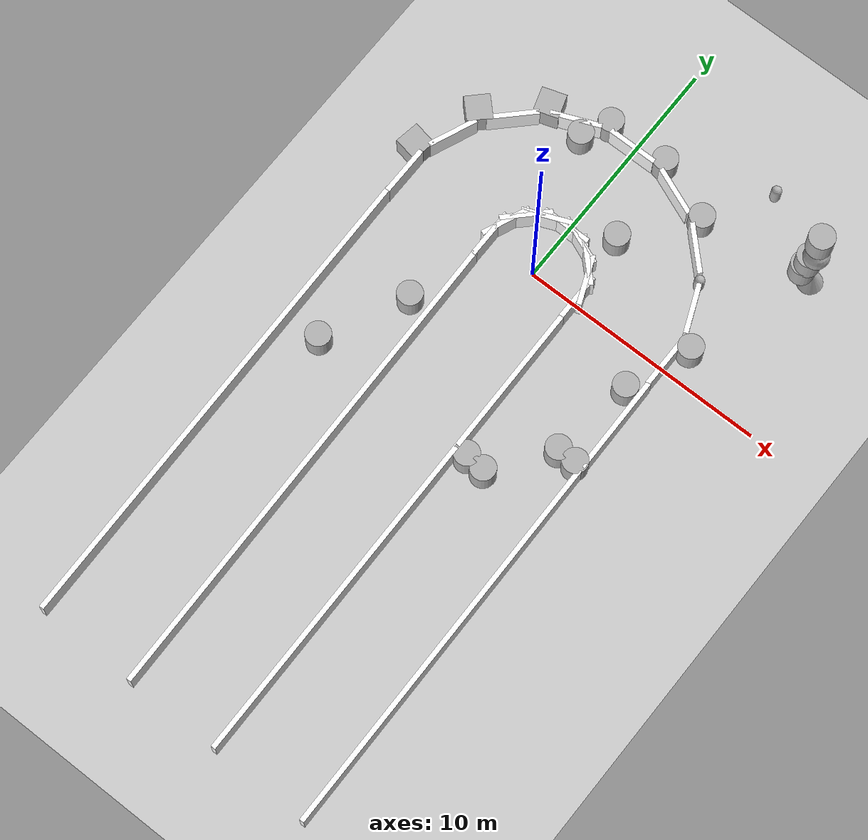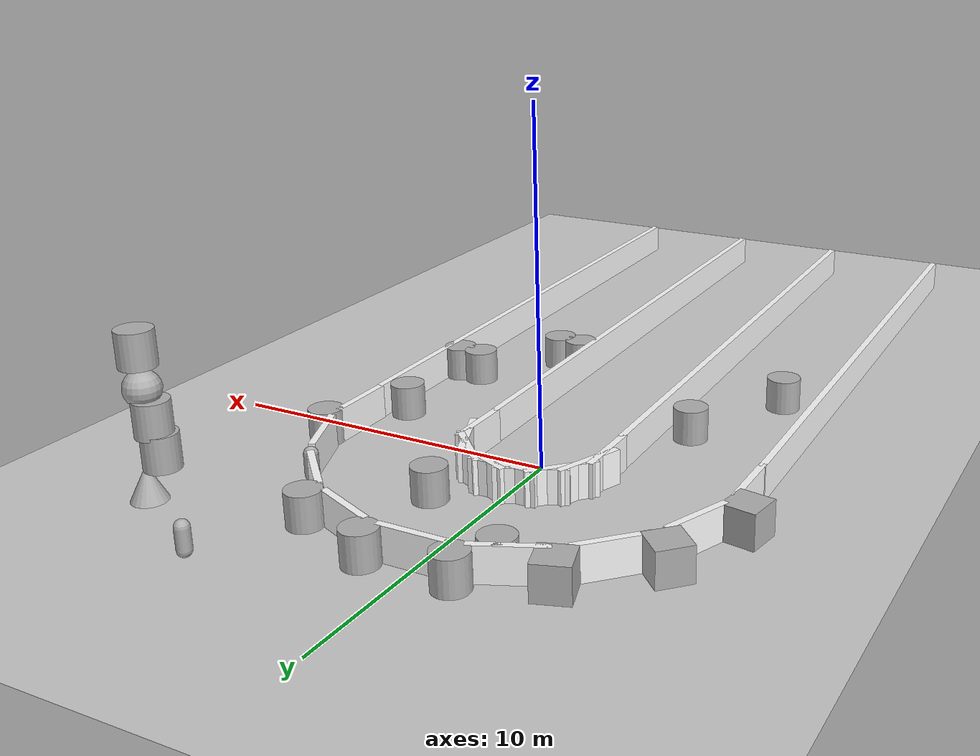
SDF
<sdf version='1.10'>
  <world name='smooth_uturn_world'>
    <gravity>0 0 -9.8000000000000007</gravity>
    <magnetic_field>5.5644999999999998e-06 2.2875799999999999e-05 -4.2388400000000002e-05</magnetic_field>
    <atmosphere type='adiabatic'/>
    <physics type='ode'>
      <max_step_size>0.001</max_step_size>
      <real_time_factor>1</real_time_factor>
      <real_time_update_rate>1000</real_time_update_rate>
    </physics>
    <scene>
      <ambient>0.400000006 0.400000006 0.400000006 1</ambient>
      <background>0.699999988 0.699999988 0.699999988 1</background>
      <shadows>true</shadows>
    </scene>
    <model name='ground'>
      <static>true</static>
      <link name='ground_link'>
        <collision name='collision'>
          <geometry>
            <plane>
              <normal>0 0 1</normal>
              <size>200 200</size>
            </plane>
          </geometry>
          <surface>
            <friction>
              <ode/>
            </friction>
            <bounce/>
            <contact/>
          </surface>
        </collision>
        <visual name='visual'>
          <geometry>
            <plane>
              <normal>0 0 1</normal>
              <size>200 200</size>
            </plane>
          </geometry>
          <material>
            <ambient>0.699999988 0.699999988 0.699999988 1</ambient>
            <diffuse>0.800000012 0.800000012 0.800000012 1</diffuse>
          </material>
        </visual>
        <pose>0 0 0 0 0 0</pose>
        <inertial>
          <pose>0 0 0 0 0 0</pose>
          <mass>1</mass>
          <inertia>
            <ixx>1</ixx>
            <ixy>0</ixy>
            <ixz>0</ixz>
            <iyy>1</iyy>
            <iyz>0</iyz>
            <izz>1</izz>
          </inertia>
        </inertial>
        <enable_wind>false</enable_wind>
      </link>
      <pose>0 0 0 0 0 0</pose>
      <self_collide>false</self_collide>
    </model>
    <model name='entry_wall_left'>
      <static>true</static>
      <link name='link'>
        <pose>-15 2 0.5 0 0 0</pose>
        <collision name='collision'>
          <geometry>
            <box>
              <size>20 0.20000000000000001 1</size>
            </box>
          </geometry>
          <surface>
            <friction>
              <ode/>
            </friction>
            <bounce/>
            <contact/>
          </surface>
        </collision>
        <visual name='visual'>
          <geometry>
            <box>
              <size>20 0.20000000000000001 1</size>
            </box>
          </geometry>
          <material>
            <ambient>1 1 1 1</ambient>
            <diffuse>1 1 1 1</diffuse>
          </material>
        </visual>
        <inertial>
          <pose>0 0 0 0 0 0</pose>
          <mass>1</mass>
          <inertia>
            <ixx>1</ixx>
            <ixy>0</ixy>
            <ixz>0</ixz>
            <iyy>1</iyy>
            <iyz>0</iyz>
            <izz>1</izz>
          </inertia>
        </inertial>
        <enable_wind>false</enable_wind>
      </link>
      <pose>-0.079777665436267853 4.1301455497741699 0 0 0 1.5901099989260186</pose>
      <self_collide>false</self_collide>
    </model>
    <model name='entry_wall_right'>
      <static>true</static>
      <link name='link'>
        <pose>-15 -2 0.5 0 0 0</pose>
        <collision name='collision'>
          <geometry>
            <box>
              <size>20 0.20000000000000001 1</size>
            </box>
          </geometry>
          <surface>
            <friction>
              <ode/>
            </friction>
            <bounce/>
            <contact/>
          </surface>
        </collision>
        <visual name='visual'>
          <geometry>
            <box>
              <size>20 0.20000000000000001 1</size>
            </box>
          </geometry>
          <material>
            <ambient>1 1 1 1</ambient>
            <diffuse>1 1 1 1</diffuse>
          </material>
        </visual>
        <inertial>
          <pose>0 0 0 0 0 0</pose>
          <mass>1</mass>
          <inertia>
            <ixx>1</ixx>
            <ixy>0</ixy>
            <ixz>0</ixz>
            <iyy>1</iyy>
            <iyz>0</iyz>
            <izz>1</izz>
          </inertia>
        </inertial>
        <enable_wind>false</enable_wind>
      </link>
      <pose>-8.1088581085205078 4.1304593086242676 0 0 0 1.5883200302631473</pose>
      <self_collide>false</self_collide>
    </model>
    <model name='outer_curve_1'>
      <static>true</static>
      <link name='link'>
        <pose>-6 0 0.5 0 0 1.571</pose>
        <collision name='collision'>
          <geometry>
            <box>
              <size>2 0.20000000000000001 1</size>
            </box>
          </geometry>
          <surface>
            <friction>
              <ode/>
            </friction>
            <bounce/>
            <contact/>
          </surface>
        </collision>
        <visual name='visual'>
          <geometry>
            <box>
              <size>2 0.20000000000000001 1</size>
            </box>
          </geometry>
          <material>
            <ambient>1 1 1 1</ambient>
            <diffuse>1 1 1 1</diffuse>
          </material>
        </visual>
        <inertial>
          <pose>0 0 0 0 0 0</pose>
          <mass>1</mass>
          <inertia>
            <ixx>1</ixx>
            <ixy>0</ixy>
            <ixz>0</ixz>
            <iyy>1</iyy>
            <iyz>0</iyz>
            <izz>1</izz>
          </inertia>
        </inertial>
        <enable_wind>false</enable_wind>
      </link>
      <pose>0 -3.5527136788005009e-15 0 0 0 -4.4408920985006262e-16</pose>
      <self_collide>false</self_collide>
    </model>
    <model name='outer_curve_2'>
      <static>true</static>
      <link name='link'>
        <pose>-5.5439999999999996 2.298 0.5 0 0 1.1779999999999999</pose>
        <collision name='collision'>
          <geometry>
            <box>
              <size>2 0.20000000000000001 1</size>
            </box>
          </geometry>
          <surface>
            <friction>
              <ode/>
            </friction>
            <bounce/>
            <contact/>
          </surface>
        </collision>
        <visual name='visual'>
          <geometry>
            <box>
              <size>2 0.20000000000000001 1</size>
            </box>
          </geometry>
          <material>
            <ambient>1 1 1 1</ambient>
            <diffuse>1 1 1 1</diffuse>
          </material>
        </visual>
        <inertial>
          <pose>0 0 0 0 0 0</pose>
          <mass>1</mass>
          <inertia>
            <ixx>1</ixx>
            <ixy>0</ixy>
            <ixz>0</ixz>
            <iyy>1</iyy>
            <iyz>0</iyz>
            <izz>1</izz>
          </inertia>
        </inertial>
        <enable_wind>false</enable_wind>
      </link>
      <pose>8.8817841970012523e-16 0 -1.1102230246251565e-16 0 0 1.1102230246251565e-16</pose>
      <self_collide>false</self_collide>
    </model>
    <model name='outer_curve_3'>
      <static>true</static>
      <link name='link'>
        <pose>-4.2430000000000003 4.2430000000000003 0.5 0 0 0.78500000000000025</pose>
        <collision name='collision'>
          <geometry>
            <box>
              <size>2 0.20000000000000001 1</size>
            </box>
          </geometry>
          <surface>
            <friction>
              <ode/>
            </friction>
            <bounce/>
            <contact/>
          </surface>
        </collision>
        <visual name='visual'>
          <geometry>
            <box>
              <size>2 0.20000000000000001 1</size>
            </box>
          </geometry>
          <material>
            <ambient>1 1 1 1</ambient>
            <diffuse>1 1 1 1</diffuse>
          </material>
        </visual>
        <inertial>
          <pose>0 0 0 0 0 0</pose>
          <mass>1</mass>
          <inertia>
            <ixx>1</ixx>
            <ixy>0</ixy>
            <ixz>0</ixz>
            <iyy>1</iyy>
            <iyz>0</iyz>
            <izz>1</izz>
          </inertia>
        </inertial>
        <enable_wind>false</enable_wind>
      </link>
      <pose>1.7763568394002505e-15 2.6645352591003757e-15 0 0 0 2.2204460492503136e-16</pose>
      <self_collide>false</self_collide>
    </model>
    <model name='outer_curve_4'>
      <static>true</static>
      <link name='link'>
        <pose>-2.298 5.5439999999999996 0.5 0 0 0.39300000000000002</pose>
        <collision name='collision'>
          <geometry>
            <box>
              <size>2 0.20000000000000001 1</size>
            </box>
          </geometry>
          <surface>
            <friction>
              <ode/>
            </friction>
            <bounce/>
            <contact/>
          </surface>
        </collision>
        <visual name='visual'>
          <geometry>
            <box>
              <size>2 0.20000000000000001 1</size>
            </box>
          </geometry>
          <material>
            <ambient>1 1 1 1</ambient>
            <diffuse>1 1 1 1</diffuse>
          </material>
        </visual>
        <inertial>
          <pose>0 0 0 0 0 0</pose>
          <mass>1</mass>
          <inertia>
            <ixx>1</ixx>
            <ixy>0</ixy>
            <ixz>0</ixz>
            <iyy>1</iyy>
            <iyz>0</iyz>
            <izz>1</izz>
          </inertia>
        </inertial>
        <enable_wind>false</enable_wind>
      </link>
      <pose>0 0 0 0 0 0</pose>
      <self_collide>false</self_collide>
    </model>
    <model name='outer_curve_5'>
      <static>true</static>
      <link name='link'>
        <pose>0 6 0.5 0 0 0</pose>
        <collision name='collision'>
          <geometry>
            <box>
              <size>2 0.20000000000000001 1</size>
            </box>
          </geometry>
          <surface>
            <friction>
              <ode/>
            </friction>
            <bounce/>
            <contact/>
          </surface>
        </collision>
        <visual name='visual'>
          <geometry>
            <box>
              <size>2 0.20000000000000001 1</size>
            </box>
          </geometry>
          <material>
            <ambient>1 1 1 1</ambient>
            <diffuse>1 1 1 1</diffuse>
          </material>
        </visual>
        <inertial>
          <pose>0 0 0 0 0 0</pose>
          <mass>1</mass>
          <inertia>
            <ixx>1</ixx>
            <ixy>0</ixy>
            <ixz>0</ixz>
            <iyy>1</iyy>
            <iyz>0</iyz>
            <izz>1</izz>
          </inertia>
        </inertial>
        <enable_wind>false</enable_wind>
      </link>
      <pose>0 0 0 0 0 0</pose>
      <self_collide>false</self_collide>
    </model>
    <model name='outer_curve_6'>
      <static>true</static>
      <link name='link'>
        <pose>2.298 5.5439999999999996 0.5 0 0 -0.39300000000000002</pose>
        <collision name='collision'>
          <geometry>
            <box>
              <size>2 0.20000000000000001 1</size>
            </box>
          </geometry>
          <surface>
            <friction>
              <ode/>
            </friction>
            <bounce/>
            <contact/>
          </surface>
        </collision>
        <visual name='visual'>
          <geometry>
            <box>
              <size>2 0.20000000000000001 1</size>
            </box>
          </geometry>
          <material>
            <ambient>1 1 1 1</ambient>
            <diffuse>1 1 1 1</diffuse>
          </material>
        </visual>
        <inertial>
          <pose>0 0 0 0 0 0</pose>
          <mass>1</mass>
          <inertia>
            <ixx>1</ixx>
            <ixy>0</ixy>
            <ixz>0</ixz>
            <iyy>1</iyy>
            <iyz>0</iyz>
            <izz>1</izz>
          </inertia>
        </inertial>
        <enable_wind>false</enable_wind>
      </link>
      <pose>0 0 0 0 0 0</pose>
      <self_collide>false</self_collide>
    </model>
    <model name='outer_curve_7'>
      <static>true</static>
      <link name='link'>
        <pose>4.2430000000000003 4.2430000000000003 0.5 0 0 -0.78500000000000025</pose>
        <collision name='collision'>
          <geometry>
            <box>
              <size>2 0.20000000000000001 1</size>
            </box>
          </geometry>
          <surface>
            <friction>
              <ode/>
            </friction>
            <bounce/>
            <contact/>
          </surface>
        </collision>
        <visual name='visual'>
          <geometry>
            <box>
              <size>2 0.20000000000000001 1</size>
            </box>
          </geometry>
          <material>
            <ambient>1 1 1 1</ambient>
            <diffuse>1 1 1 1</diffuse>
          </material>
        </visual>
        <inertial>
          <pose>0 0 0 0 0 0</pose>
          <mass>1</mass>
          <inertia>
            <ixx>1</ixx>
            <ixy>0</ixy>
            <ixz>0</ixz>
            <iyy>1</iyy>
            <iyz>0</iyz>
            <izz>1</izz>
          </inertia>
        </inertial>
        <enable_wind>false</enable_wind>
      </link>
      <pose>-1.7763568394002505e-15 2.6645352591003757e-15 0 0 0 -2.2204460492503136e-16</pose>
      <self_collide>false</self_collide>
    </model>
    <model name='outer_curve_8'>
      <static>true</static>
      <link name='link'>
        <pose>5.5439999999999996 2.298 0.5 0 0 -1.1779999999999999</pose>
        <collision name='collision'>
          <geometry>
            <box>
              <size>2 0.20000000000000001 1</size>
            </box>
          </geometry>
          <surface>
            <friction>
              <ode/>
            </friction>
            <bounce/>
            <contact/>
          </surface>
        </collision>
        <visual name='visual'>
          <geometry>
            <box>
              <size>2 0.20000000000000001 1</size>
            </box>
          </geometry>
          <material>
            <ambient>1 1 1 1</ambient>
            <diffuse>1 1 1 1</diffuse>
          </material>
        </visual>
        <inertial>
          <pose>0 0 0 0 0 0</pose>
          <mass>1</mass>
          <inertia>
            <ixx>1</ixx>
            <ixy>0</ixy>
            <ixz>0</ixz>
            <iyy>1</iyy>
            <iyz>0</iyz>
            <izz>1</izz>
          </inertia>
        </inertial>
        <enable_wind>false</enable_wind>
      </link>
      <pose>-8.8817841970012523e-16 0 -1.1102230246251565e-16 0 0 -1.1102230246251565e-16</pose>
      <self_collide>false</self_collide>
    </model>
    <model name='outer_curve_9'>
      <static>true</static>
      <link name='link'>
        <pose>6 0 0.5 0 0 -1.571</pose>
        <collision name='collision'>
          <geometry>
            <box>
              <size>2 0.20000000000000001 1</size>
            </box>
          </geometry>
          <surface>
            <friction>
              <ode/>
            </friction>
            <bounce/>
            <contact/>
          </surface>
        </collision>
        <visual name='visual'>
          <geometry>
            <box>
              <size>2 0.20000000000000001 1</size>
            </box>
          </geometry>
          <material>
            <ambient>1 1 1 1</ambient>
            <diffuse>1 1 1 1</diffuse>
          </material>
        </visual>
        <inertial>
          <pose>0 0 0 0 0 0</pose>
          <mass>1</mass>
          <inertia>
            <ixx>1</ixx>
            <ixy>0</ixy>
            <ixz>0</ixz>
            <iyy>1</iyy>
            <iyz>0</iyz>
            <izz>1</izz>
          </inertia>
        </inertial>
        <enable_wind>false</enable_wind>
      </link>
      <pose>0 -3.5527136788005009e-15 0 0 0 4.4408920985006262e-16</pose>
      <self_collide>false</self_collide>
    </model>
    <model name='inner_curve_1'>
      <static>true</static>
      <link name='link'>
        <pose>-2 0 0.5 0 0 1.571</pose>
        <collision name='collision'>
          <geometry>
            <box>
              <size>2 0.20000000000000001 1</size>
            </box>
          </geometry>
          <surface>
            <friction>
              <ode/>
            </friction>
            <bounce/>
            <contact/>
          </surface>
        </collision>
        <visual name='visual'>
          <geometry>
            <box>
              <size>2 0.20000000000000001 1</size>
            </box>
          </geometry>
          <material>
            <ambient>1 1 1 1</ambient>
            <diffuse>1 1 1 1</diffuse>
          </material>
        </visual>
        <inertial>
          <pose>0 0 0 0 0 0</pose>
          <mass>1</mass>
          <inertia>
            <ixx>1</ixx>
            <ixy>0</ixy>
            <ixz>0</ixz>
            <iyy>1</iyy>
            <iyz>0</iyz>
            <izz>1</izz>
          </inertia>
        </inertial>
        <enable_wind>false</enable_wind>
      </link>
      <pose>0 -9.9920072216264089e-16 0 0 0 -4.4408920985006262e-16</pose>
      <self_collide>false</self_collide>
    </model>
    <model name='inner_curve_2'>
      <static>true</static>
      <link name='link'>
        <pose>-1.8480000000000001 0.76500000000000001 0.5 0 0 1.1779999999999999</pose>
        <collision name='collision'>
          <geometry>
            <box>
              <size>2 0.20000000000000001 1</size>
            </box>
          </geometry>
          <surface>
            <friction>
              <ode/>
            </friction>
            <bounce/>
            <contact/>
          </surface>
        </collision>
        <visual name='visual'>
          <geometry>
            <box>
              <size>2 0.20000000000000001 1</size>
            </box>
          </geometry>
          <material>
            <ambient>1 1 1 1</ambient>
            <diffuse>1 1 1 1</diffuse>
          </material>
        </visual>
        <inertial>
          <pose>0 0 0 0 0 0</pose>
          <mass>1</mass>
          <inertia>
            <ixx>1</ixx>
            <ixy>0</ixy>
            <ixz>0</ixz>
            <iyy>1</iyy>
            <iyz>0</iyz>
            <izz>1</izz>
          </inertia>
        </inertial>
        <enable_wind>false</enable_wind>
      </link>
      <pose>2.2204460492503131e-16 -3.3306690738754696e-16 -1.1102230246251565e-16 0 0 1.1102230246251565e-16</pose>
      <self_collide>false</self_collide>
    </model>
    <model name='inner_curve_3'>
      <static>true</static>
      <link name='link'>
        <pose>-1.4139999999999999 1.4139999999999999 0.5 0 0 0.78500000000000025</pose>
        <collision name='collision'>
          <geometry>
            <box>
              <size>2 0.20000000000000001 1</size>
            </box>
          </geometry>
          <surface>
            <friction>
              <ode/>
            </friction>
            <bounce/>
            <contact/>
          </surface>
        </collision>
        <visual name='visual'>
          <geometry>
            <box>
              <size>2 0.20000000000000001 1</size>
            </box>
          </geometry>
          <material>
            <ambient>1 1 1 1</ambient>
            <diffuse>1 1 1 1</diffuse>
          </material>
        </visual>
        <inertial>
          <pose>0 0 0 0 0 0</pose>
          <mass>1</mass>
          <inertia>
            <ixx>1</ixx>
            <ixy>0</ixy>
            <ixz>0</ixz>
            <iyy>1</iyy>
            <iyz>0</iyz>
            <izz>1</izz>
          </inertia>
        </inertial>
        <enable_wind>false</enable_wind>
      </link>
      <pose>6.6613381477509392e-16 4.4408920985006262e-16 0 0 0 2.2204460492503136e-16</pose>
      <self_collide>false</self_collide>
    </model>
    <model name='inner_curve_4'>
      <static>true</static>
      <link name='link'>
        <pose>-0.76500000000000001 1.8480000000000001 0.5 0 0 0.39300000000000002</pose>
        <collision name='collision'>
          <geometry>
            <box>
              <size>2 0.20000000000000001 1</size>
            </box>
          </geometry>
          <surface>
            <friction>
              <ode/>
            </friction>
            <bounce/>
            <contact/>
          </surface>
        </collision>
        <visual name='visual'>
          <geometry>
            <box>
              <size>2 0.20000000000000001 1</size>
            </box>
          </geometry>
          <material>
            <ambient>1 1 1 1</ambient>
            <diffuse>1 1 1 1</diffuse>
          </material>
        </visual>
        <inertial>
          <pose>0 0 0 0 0 0</pose>
          <mass>1</mass>
          <inertia>
            <ixx>1</ixx>
            <ixy>0</ixy>
            <ixz>0</ixz>
            <iyy>1</iyy>
            <iyz>0</iyz>
            <izz>1</izz>
          </inertia>
        </inertial>
        <enable_wind>false</enable_wind>
      </link>
      <pose>-1.1102230246251565e-16 2.2204460492503131e-16 0 0 0 0</pose>
      <self_collide>false</self_collide>
    </model>
    <model name='inner_curve_5'>
      <static>true</static>
      <link name='link'>
        <pose>0 2 0.5 0 0 0</pose>
        <collision name='collision'>
          <geometry>
            <box>
              <size>2 0.20000000000000001 1</size>
            </box>
          </geometry>
          <surface>
            <friction>
              <ode/>
            </friction>
            <bounce/>
            <contact/>
          </surface>
        </collision>
        <visual name='visual'>
          <geometry>
            <box>
              <size>2 0.20000000000000001 1</size>
            </box>
          </geometry>
          <material>
            <ambient>1 1 1 1</ambient>
            <diffuse>1 1 1 1</diffuse>
          </material>
        </visual>
        <inertial>
          <pose>0 0 0 0 0 0</pose>
          <mass>1</mass>
          <inertia>
            <ixx>1</ixx>
            <ixy>0</ixy>
            <ixz>0</ixz>
            <iyy>1</iyy>
            <iyz>0</iyz>
            <izz>1</izz>
          </inertia>
        </inertial>
        <enable_wind>false</enable_wind>
      </link>
      <pose>0 0 0 0 0 0</pose>
      <self_collide>false</self_collide>
    </model>
    <model name='inner_curve_6'>
      <static>true</static>
      <link name='link'>
        <pose>0.76500000000000001 1.8480000000000001 0.5 0 0 -0.39300000000000002</pose>
        <collision name='collision'>
          <geometry>
            <box>
              <size>2 0.20000000000000001 1</size>
            </box>
          </geometry>
          <surface>
            <friction>
              <ode/>
            </friction>
            <bounce/>
            <contact/>
          </surface>
        </collision>
        <visual name='visual'>
          <geometry>
            <box>
              <size>2 0.20000000000000001 1</size>
            </box>
          </geometry>
          <material>
            <ambient>1 1 1 1</ambient>
            <diffuse>1 1 1 1</diffuse>
          </material>
        </visual>
        <inertial>
          <pose>0 0 0 0 0 0</pose>
          <mass>1</mass>
          <inertia>
            <ixx>1</ixx>
            <ixy>0</ixy>
            <ixz>0</ixz>
            <iyy>1</iyy>
            <iyz>0</iyz>
            <izz>1</izz>
          </inertia>
        </inertial>
        <enable_wind>false</enable_wind>
      </link>
      <pose>1.1102230246251565e-16 2.2204460492503131e-16 0 0 0 0</pose>
      <self_collide>false</self_collide>
    </model>
    <model name='inner_curve_7'>
      <static>true</static>
      <link name='link'>
        <pose>1.4139999999999999 1.4139999999999999 0.5 0 0 -0.78500000000000025</pose>
        <collision name='collision'>
          <geometry>
            <box>
              <size>2 0.20000000000000001 1</size>
            </box>
          </geometry>
          <surface>
            <friction>
              <ode/>
            </friction>
            <bounce/>
            <contact/>
          </surface>
        </collision>
        <visual name='visual'>
          <geometry>
            <box>
              <size>2 0.20000000000000001 1</size>
            </box>
          </geometry>
          <material>
            <ambient>1 1 1 1</ambient>
            <diffuse>1 1 1 1</diffuse>
          </material>
        </visual>
        <inertial>
          <pose>0 0 0 0 0 0</pose>
          <mass>1</mass>
          <inertia>
            <ixx>1</ixx>
            <ixy>0</ixy>
            <ixz>0</ixz>
            <iyy>1</iyy>
            <iyz>0</iyz>
            <izz>1</izz>
          </inertia>
        </inertial>
        <enable_wind>false</enable_wind>
      </link>
      <pose>-6.6613381477509392e-16 4.4408920985006262e-16 0 0 0 -2.2204460492503136e-16</pose>
      <self_collide>false</self_collide>
    </model>
    <model name='inner_curve_8'>
      <static>true</static>
      <link name='link'>
        <pose>1.8480000000000001 0.76500000000000001 0.5 0 0 -1.1779999999999999</pose>
        <collision name='collision'>
          <geometry>
            <box>
              <size>2 0.20000000000000001 1</size>
            </box>
          </geometry>
          <surface>
            <friction>
              <ode/>
            </friction>
            <bounce/>
            <contact/>
          </surface>
        </collision>
        <visual name='visual'>
          <geometry>
            <box>
              <size>2 0.20000000000000001 1</size>
            </box>
          </geometry>
          <material>
            <ambient>1 1 1 1</ambient>
            <diffuse>1 1 1 1</diffuse>
          </material>
        </visual>
        <inertial>
          <pose>0 0 0 0 0 0</pose>
          <mass>1</mass>
          <inertia>
            <ixx>1</ixx>
            <ixy>0</ixy>
            <ixz>0</ixz>
            <iyy>1</iyy>
            <iyz>0</iyz>
            <izz>1</izz>
          </inertia>
        </inertial>
        <enable_wind>false</enable_wind>
      </link>
      <pose>-2.2204460492503131e-16 -3.3306690738754696e-16 -1.1102230246251565e-16 0 0 -1.1102230246251565e-16</pose>
      <self_collide>false</self_collide>
    </model>
    <model name='inner_curve_9'>
      <static>true</static>
      <link name='link'>
        <pose>2 0 0.5 0 0 -1.571</pose>
        <collision name='collision'>
          <geometry>
            <box>
              <size>2 0.20000000000000001 1</size>
            </box>
          </geometry>
          <surface>
            <friction>
              <ode/>
            </friction>
            <bounce/>
            <contact/>
          </surface>
        </collision>
        <visual name='visual'>
          <geometry>
            <box>
              <size>2 0.20000000000000001 1</size>
            </box>
          </geometry>
          <material>
            <ambient>1 1 1 1</ambient>
            <diffuse>1 1 1 1</diffuse>
          </material>
        </visual>
        <inertial>
          <pose>0 0 0 0 0 0</pose>
          <mass>1</mass>
          <inertia>
            <ixx>1</ixx>
            <ixy>0</ixy>
            <ixz>0</ixz>
            <iyy>1</iyy>
            <iyz>0</iyz>
            <izz>1</izz>
          </inertia>
        </inertial>
        <enable_wind>false</enable_wind>
      </link>
      <pose>0 -9.9920072216264089e-16 0 0 0 4.4408920985006262e-16</pose>
      <self_collide>false</self_collide>
    </model>
    <model name='exit_wall_left'>
      <static>true</static>
      <link name='link'>
        <pose>15 -2 0.5 0 0 0</pose>
        <collision name='collision'>
          <geometry>
            <box>
              <size>20 0.20000000000000001 1</size>
            </box>
          </geometry>
          <surface>
            <friction>
              <ode/>
            </friction>
            <bounce/>
            <contact/>
          </surface>
        </collision>
        <visual name='visual'>
          <geometry>
            <box>
              <size>20 0.20000000000000001 1</size>
            </box>
          </geometry>
          <material>
            <ambient>1 1 1 1</ambient>
            <diffuse>1 1 1 1</diffuse>
          </material>
        </visual>
        <inertial>
          <pose>0 0 0 0 0 0</pose>
          <mass>1</mass>
          <inertia>
            <ixx>1</ixx>
            <ixy>0</ixy>
            <ixz>0</ixz>
            <iyy>1</iyy>
            <iyz>0</iyz>
            <izz>1</izz>
          </inertia>
        </inertial>
        <enable_wind>false</enable_wind>
      </link>
      <pose>3.9622550010681152 4.113278865814209 0 0 0 -1.5601300046990412</pose>
      <self_collide>false</self_collide>
    </model>
    <model name='capsule'>
      <pose>5.1967672263683031 7.9302386483008389 0.5 0 0 0</pose>
      <link name='capsule_link'>
        <inertial>
          <inertia>
            <ixx>0.074153999999999998</ixx>
            <ixy>0</ixy>
            <ixz>0</ixz>
            <iyy>0.074153999999999998</iyy>
            <iyz>0</iyz>
            <izz>0.018769000000000001</izz>
          </inertia>
          <mass>1</mass>
          <pose>0 0 0 0 0 0</pose>
        </inertial>
        <collision name='capsule_collision'>
          <geometry>
            <capsule>
              <radius>0.20000000000000001</radius>
              <length>0.59999999999999998</length>
            </capsule>
          </geometry>
          <surface>
            <friction>
              <ode/>
            </friction>
            <bounce/>
            <contact/>
          </surface>
        </collision>
        <visual name='capsule_visual'>
          <geometry>
            <capsule>
              <radius>0.20000000000000001</radius>
              <length>0.59999999999999998</length>
            </capsule>
          </geometry>
          <material>
            <ambient>0.300000012 0.300000012 0.300000012 1</ambient>
            <diffuse>0.699999988 0.699999988 0.699999988 1</diffuse>
            <specular>1 1 1 1</specular>
          </material>
        </visual>
        <pose>0 0 0 0 0 0</pose>
        <enable_wind>false</enable_wind>
      </link>
      <static>false</static>
      <self_collide>false</self_collide>
    </model>
    <model name='exit_wall_left_1'>
      <static>true</static>
      <link name='link'>
        <pose>15 -2 0.5 0 0 0</pose>
        <collision name='collision'>
          <geometry>
            <box>
              <size>20 0.20000000000000001 1</size>
            </box>
          </geometry>
          <surface>
            <friction>
              <ode/>
            </friction>
            <bounce/>
            <contact/>
          </surface>
        </collision>
        <visual name='visual'>
          <geometry>
            <box>
              <size>20 0.20000000000000001 1</size>
            </box>
          </geometry>
          <material>
            <ambient>1 1 1 1</ambient>
            <diffuse>1 1 1 1</diffuse>
          </material>
        </visual>
      </link>
      <pose>7.9746796555493837 4.0458544120549345 0 0 0 -1.5601300046990412</pose>
      <self_collide>false</self_collide>
    </model>
    <model name='box'>
      <pose>-5.4183287620544442 3.6707358360290532 0.5 0 0 0.78733296771939243</pose>
      <link name='box_link'>
        <inertial>
          <inertia>
            <ixx>0.16666</ixx>
            <ixy>0</ixy>
            <ixz>0</ixz>
            <iyy>0.16666</iyy>
            <iyz>0</iyz>
            <izz>0.16666</izz>
          </inertia>
          <mass>1</mass>
          <pose>0 0 0 0 0 0</pose>
        </inertial>
        <collision name='box_collision'>
          <geometry>
            <box>
              <size>1 1 1</size>
            </box>
          </geometry>
          <surface>
            <friction>
              <ode/>
            </friction>
            <bounce/>
            <contact/>
          </surface>
        </collision>
        <visual name='box_visual'>
          <geometry>
            <box>
              <size>1 1 1</size>
            </box>
          </geometry>
          <material>
            <ambient>0.300000012 0.300000012 0.300000012 1</ambient>
            <diffuse>0.699999988 0.699999988 0.699999988 1</diffuse>
            <specular>1 1 1 1</specular>
          </material>
        </visual>
        <pose>0 0 0 0 0 0</pose>
        <enable_wind>false</enable_wind>
      </link>
      <static>false</static>
      <self_collide>false</self_collide>
    </model>
    <model name='box_0'>
      <pose>-6.392509937286377 1.1493599414825439 0.5 0 0 -0.16541169323810806</pose>
      <link name='box_link'>
        <inertial>
          <inertia>
            <ixx>0.16666</ixx>
            <ixy>0</ixy>
            <ixz>0</ixz>
            <iyy>0.16666</iyy>
            <iyz>0</iyz>
            <izz>0.16666</izz>
          </inertia>
          <mass>1</mass>
          <pose>0 0 0 0 0 0</pose>
        </inertial>
        <collision name='box_collision'>
          <geometry>
            <box>
              <size>1 1 1</size>
            </box>
          </geometry>
          <surface>
            <friction>
              <ode/>
            </friction>
            <bounce/>
            <contact/>
          </surface>
        </collision>
        <visual name='box_visual'>
          <geometry>
            <box>
              <size>1 1 1</size>
            </box>
          </geometry>
          <material>
            <ambient>0.300000012 0.300000012 0.300000012 1</ambient>
            <diffuse>0.699999988 0.699999988 0.699999988 1</diffuse>
            <specular>1 1 1 1</specular>
          </material>
        </visual>
        <pose>0 0 0 0 0 0</pose>
        <enable_wind>false</enable_wind>
      </link>
      <static>false</static>
      <self_collide>false</self_collide>
    </model>
    <model name='box_1'>
      <pose>-3.4463784694671631 5.471390724182128 0.5 0 0 0.31045599556283343</pose>
      <link name='box_link'>
        <inertial>
          <inertia>
            <ixx>0.16666</ixx>
            <ixy>0</ixy>
            <ixz>0</ixz>
            <iyy>0.16666</iyy>
            <iyz>0</iyz>
            <izz>0.16666</izz>
          </inertia>
          <mass>1</mass>
          <pose>0 0 0 0 0 0</pose>
        </inertial>
        <collision name='box_collision'>
          <geometry>
            <box>
              <size>1 1 1</size>
            </box>
          </geometry>
          <surface>
            <friction>
              <ode/>
            </friction>
            <bounce/>
            <contact/>
          </surface>
        </collision>
        <visual name='box_visual'>
          <geometry>
            <box>
              <size>1 1 1</size>
            </box>
          </geometry>
          <material>
            <ambient>0.300000012 0.300000012 0.300000012 1</ambient>
            <diffuse>0.699999988 0.699999988 0.699999988 1</diffuse>
            <specular>1 1 1 1</specular>
          </material>
        </visual>
        <pose>0 0 0 0 0 0</pose>
        <enable_wind>false</enable_wind>
      </link>
      <static>false</static>
      <self_collide>false</self_collide>
    </model>
    <model name='cylinder'>
      <pose>-1.2485975638175271 6.3362861278383811 0.5 0 0 0</pose>
      <link name='cylinder_link'>
        <inertial>
          <inertia>
            <ixx>0.14580000000000001</ixx>
            <ixy>0</ixy>
            <ixz>0</ixz>
            <iyy>0.14580000000000001</iyy>
            <iyz>0</iyz>
            <izz>0.125</izz>
          </inertia>
          <mass>1</mass>
          <pose>0 0 0 0 0 0</pose>
        </inertial>
        <collision name='cylinder_collision'>
          <geometry>
            <cylinder>
              <radius>0.5</radius>
              <length>1</length>
            </cylinder>
          </geometry>
          <surface>
            <friction>
              <ode/>
            </friction>
            <bounce/>
            <contact/>
          </surface>
        </collision>
        <visual name='cylinder_visual'>
          <geometry>
            <cylinder>
              <radius>0.5</radius>
              <length>1</length>
            </cylinder>
          </geometry>
          <material>
            <ambient>0.300000012 0.300000012 0.300000012 1</ambient>
            <diffuse>0.699999988 0.699999988 0.699999988 1</diffuse>
            <specular>1 1 1 1</specular>
          </material>
        </visual>
        <pose>0 0 0 0 0 0</pose>
        <enable_wind>false</enable_wind>
      </link>
      <static>false</static>
      <self_collide>false</self_collide>
    </model>
    <model name='cylinder_0'>
      <pose>1.2486575958461152 6.3576212885272758 0.5 0 0 0</pose>
      <link name='cylinder_link'>
        <inertial>
          <inertia>
            <ixx>0.14580000000000001</ixx>
            <ixy>0</ixy>
            <ixz>0</ixz>
            <iyy>0.14580000000000001</iyy>
            <iyz>0</iyz>
            <izz>0.125</izz>
          </inertia>
          <mass>1</mass>
          <pose>0 0 0 0 0 0</pose>
        </inertial>
        <collision name='cylinder_collision'>
          <geometry>
            <cylinder>
              <radius>0.5</radius>
              <length>1</length>
            </cylinder>
          </geometry>
          <surface>
            <friction>
              <ode/>
            </friction>
            <bounce/>
            <contact/>
          </surface>
        </collision>
        <visual name='cylinder_visual'>
          <geometry>
            <cylinder>
              <radius>0.5</radius>
              <length>1</length>
            </cylinder>
          </geometry>
          <material>
            <ambient>0.300000012 0.300000012 0.300000012 1</ambient>
            <diffuse>0.699999988 0.699999988 0.699999988 1</diffuse>
            <specular>1 1 1 1</specular>
          </material>
        </visual>
        <pose>0 0 0 0 0 0</pose>
        <enable_wind>false</enable_wind>
      </link>
      <static>false</static>
      <self_collide>false</self_collide>
    </model>
    <model name='cylinder_1'>
      <pose>3.6610903149681668 5.4012730473301547 0.5 0 0 0</pose>
      <link name='cylinder_link'>
        <inertial>
          <inertia>
            <ixx>0.14580000000000001</ixx>
            <ixy>0</ixy>
            <ixz>0</ixz>
            <iyy>0.14580000000000001</iyy>
            <iyz>0</iyz>
            <izz>0.125</izz>
          </inertia>
          <mass>1</mass>
          <pose>0 0 0 0 0 0</pose>
        </inertial>
        <collision name='cylinder_collision'>
          <geometry>
            <cylinder>
              <radius>0.5</radius>
              <length>1</length>
            </cylinder>
          </geometry>
          <surface>
            <friction>
              <ode/>
            </friction>
            <bounce/>
            <contact/>
          </surface>
        </collision>
        <visual name='cylinder_visual'>
          <geometry>
            <cylinder>
              <radius>0.5</radius>
              <length>1</length>
            </cylinder>
          </geometry>
          <material>
            <ambient>0.300000012 0.300000012 0.300000012 1</ambient>
            <diffuse>0.699999988 0.699999988 0.699999988 1</diffuse>
            <specular>1 1 1 1</specular>
          </material>
        </visual>
        <pose>0 0 0 0 0 0</pose>
        <enable_wind>false</enable_wind>
      </link>
      <static>false</static>
      <self_collide>false</self_collide>
    </model>
    <model name='capsule_0'>
      <pose>5.0815163795277893 3.3678458676636898 0.5 0 0 0</pose>
      <link name='capsule_link'>
        <inertial>
          <inertia>
            <ixx>0.074153999999999998</ixx>
            <ixy>0</ixy>
            <ixz>0</ixz>
            <iyy>0.074153999999999998</iyy>
            <iyz>0</iyz>
            <izz>0.018769000000000001</izz>
          </inertia>
          <mass>1</mass>
          <pose>0 0 0 0 0 0</pose>
        </inertial>
        <collision name='capsule_collision'>
          <geometry>
            <capsule>
              <radius>0.20000000000000001</radius>
              <length>0.59999999999999998</length>
            </capsule>
          </geometry>
          <surface>
            <friction>
              <ode/>
            </friction>
            <bounce/>
            <contact/>
          </surface>
        </collision>
        <visual name='capsule_visual'>
          <geometry>
            <capsule>
              <radius>0.20000000000000001</radius>
              <length>0.59999999999999998</length>
            </capsule>
          </geometry>
          <material>
            <ambient>0.300000012 0.300000012 0.300000012 1</ambient>
            <diffuse>0.699999988 0.699999988 0.699999988 1</diffuse>
            <specular>1 1 1 1</specular>
          </material>
        </visual>
        <pose>0 0 0 0 0 0</pose>
        <enable_wind>false</enable_wind>
      </link>
      <static>false</static>
      <self_collide>false</self_collide>
    </model>
    <model name='cylinder_2'>
      <pose>6.3840946436366863 1.0921794301979832 0.5 0 0 0</pose>
      <link name='cylinder_link'>
        <inertial>
          <inertia>
            <ixx>0.14580000000000001</ixx>
            <ixy>0</ixy>
            <ixz>0</ixz>
            <iyy>0.14580000000000001</iyy>
            <iyz>0</iyz>
            <izz>0.125</izz>
          </inertia>
          <mass>1</mass>
          <pose>0 0 0 0 0 0</pose>
        </inertial>
        <collision name='cylinder_collision'>
          <geometry>
            <cylinder>
              <radius>0.5</radius>
              <length>1</length>
            </cylinder>
          </geometry>
          <surface>
            <friction>
              <ode/>
            </friction>
            <bounce/>
            <contact/>
          </surface>
        </collision>
        <visual name='cylinder_visual'>
          <geometry>
            <cylinder>
              <radius>0.5</radius>
              <length>1</length>
            </cylinder>
          </geometry>
          <material>
            <ambient>0.300000012 0.300000012 0.300000012 1</ambient>
            <diffuse>0.699999988 0.699999988 0.699999988 1</diffuse>
            <specular>1 1 1 1</specular>
          </material>
        </visual>
        <pose>0 0 0 0 0 0</pose>
        <enable_wind>false</enable_wind>
      </link>
      <static>false</static>
      <self_collide>false</self_collide>
    </model>
    <model name='cylinder_3'>
      <pose>-1.8358390345463569 5.2559017933535923 0.5 0 0 0</pose>
      <link name='cylinder_link'>
        <inertial>
          <inertia>
            <ixx>0.14580000000000001</ixx>
            <ixy>0</ixy>
            <ixz>0</ixz>
            <iyy>0.14580000000000001</iyy>
            <iyz>0</iyz>
            <izz>0.125</izz>
          </inertia>
          <mass>1</mass>
          <pose>0 0 0 0 0 0</pose>
        </inertial>
        <collision name='cylinder_collision'>
          <geometry>
            <cylinder>
              <radius>0.5</radius>
              <length>1</length>
            </cylinder>
          </geometry>
          <surface>
            <friction>
              <ode/>
            </friction>
            <bounce/>
            <contact/>
          </surface>
        </collision>
        <visual name='cylinder_visual'>
          <geometry>
            <cylinder>
              <radius>0.5</radius>
              <length>1</length>
            </cylinder>
          </geometry>
          <material>
            <ambient>0.300000012 0.300000012 0.300000012 1</ambient>
            <diffuse>0.699999988 0.699999988 0.699999988 1</diffuse>
            <specular>1 1 1 1</specular>
          </material>
        </visual>
        <pose>0 0 0 0 0 0</pose>
        <enable_wind>false</enable_wind>
      </link>
      <static>false</static>
      <self_collide>false</self_collide>
    </model>
    <model name='cylinder_4'>
      <pose>1.6605088264618857 2.8841226361573686 0.5 0 0 0</pose>
      <link name='cylinder_link'>
        <inertial>
          <inertia>
            <ixx>0.14580000000000001</ixx>
            <ixy>0</ixy>
            <ixz>0</ixz>
            <iyy>0.14580000000000001</iyy>
            <iyz>0</iyz>
            <izz>0.125</izz>
          </inertia>
          <mass>1</mass>
          <pose>0 0 0 0 0 0</pose>
        </inertial>
        <collision name='cylinder_collision'>
          <geometry>
            <cylinder>
              <radius>0.5</radius>
              <length>1</length>
            </cylinder>
          </geometry>
          <surface>
            <friction>
              <ode/>
            </friction>
            <bounce/>
            <contact/>
          </surface>
        </collision>
        <visual name='cylinder_visual'>
          <geometry>
            <cylinder>
              <radius>0.5</radius>
              <length>1</length>
            </cylinder>
          </geometry>
          <material>
            <ambient>0.300000012 0.300000012 0.300000012 1</ambient>
            <diffuse>0.699999988 0.699999988 0.699999988 1</diffuse>
            <specular>1 1 1 1</specular>
          </material>
        </visual>
        <pose>0 0 0 0 0 0</pose>
        <enable_wind>false</enable_wind>
      </link>
      <static>false</static>
      <self_collide>false</self_collide>
    </model>
    <model name='cylinder_5'>
      <pose>-2.8515296050702261 -3.6144130309146747 0.5 0 0 0</pose>
      <link name='cylinder_link'>
        <inertial>
          <inertia>
            <ixx>0.14580000000000001</ixx>
            <ixy>0</ixy>
            <ixz>0</ixz>
            <iyy>0.14580000000000001</iyy>
            <iyz>0</iyz>
            <izz>0.125</izz>
          </inertia>
          <mass>1</mass>
          <pose>0 0 0 0 0 0</pose>
        </inertial>
        <collision name='cylinder_collision'>
          <geometry>
            <cylinder>
              <radius>0.5</radius>
              <length>1</length>
            </cylinder>
          </geometry>
          <surface>
            <friction>
              <ode/>
            </friction>
            <bounce/>
            <contact/>
          </surface>
        </collision>
        <visual name='cylinder_visual'>
          <geometry>
            <cylinder>
              <radius>0.5</radius>
              <length>1</length>
            </cylinder>
          </geometry>
          <material>
            <ambient>0.300000012 0.300000012 0.300000012 1</ambient>
            <diffuse>0.699999988 0.699999988 0.699999988 1</diffuse>
            <specular>1 1 1 1</specular>
          </material>
        </visual>
        <pose>0 0 0 0 0 0</pose>
        <enable_wind>false</enable_wind>
      </link>
      <static>false</static>
      <self_collide>false</self_collide>
    </model>
    <model name='cylinder_6'>
      <pose>-4.4750740073607975 -6.9007541522435707 0.5 0 0 0</pose>
      <link name='cylinder_link'>
        <inertial>
          <inertia>
            <ixx>0.14580000000000001</ixx>
            <ixy>0</ixy>
            <ixz>0</ixz>
            <iyy>0.14580000000000001</iyy>
            <iyz>0</iyz>
            <izz>0.125</izz>
          </inertia>
          <mass>1</mass>
          <pose>0 0 0 0 0 0</pose>
        </inertial>
        <collision name='cylinder_collision'>
          <geometry>
            <cylinder>
              <radius>0.5</radius>
              <length>1</length>
            </cylinder>
          </geometry>
          <surface>
            <friction>
              <ode/>
            </friction>
            <bounce/>
            <contact/>
          </surface>
        </collision>
        <visual name='cylinder_visual'>
          <geometry>
            <cylinder>
              <radius>0.5</radius>
              <length>1</length>
            </cylinder>
          </geometry>
          <material>
            <ambient>0.300000012 0.300000012 0.300000012 1</ambient>
            <diffuse>0.699999988 0.699999988 0.699999988 1</diffuse>
            <specular>1 1 1 1</specular>
          </material>
        </visual>
        <pose>0 0 0 0 0 0</pose>
        <enable_wind>false</enable_wind>
      </link>
      <static>false</static>
      <self_collide>false</self_collide>
    </model>
    <model name='cylinder_7'>
      <pose>5.4126725137061431 -1.5169927465429409 0.5 0 0 0</pose>
      <link name='cylinder_link'>
        <inertial>
          <inertia>
            <ixx>0.14580000000000001</ixx>
            <ixy>0</ixy>
            <ixz>0</ixz>
            <iyy>0.14580000000000001</iyy>
            <iyz>0</iyz>
            <izz>0.125</izz>
          </inertia>
          <mass>1</mass>
          <pose>0 0 0 0 0 0</pose>
        </inertial>
        <collision name='cylinder_collision'>
          <geometry>
            <cylinder>
              <radius>0.5</radius>
              <length>1</length>
            </cylinder>
          </geometry>
          <surface>
            <friction>
              <ode/>
            </friction>
            <bounce/>
            <contact/>
          </surface>
        </collision>
        <visual name='cylinder_visual'>
          <geometry>
            <cylinder>
              <radius>0.5</radius>
              <length>1</length>
            </cylinder>
          </geometry>
          <material>
            <ambient>0.300000012 0.300000012 0.300000012 1</ambient>
            <diffuse>0.699999988 0.699999988 0.699999988 1</diffuse>
            <specular>1 1 1 1</specular>
          </material>
        </visual>
        <pose>0 0 0 0 0 0</pose>
        <enable_wind>false</enable_wind>
      </link>
      <static>false</static>
      <self_collide>false</self_collide>
    </model>
    <model name='cylinder_8'>
      <pose>5.7307316950206229 -4.9079492543223759 0.5 0 0 0</pose>
      <link name='cylinder_link'>
        <inertial>
          <inertia>
            <ixx>0.14580000000000001</ixx>
            <ixy>0</ixy>
            <ixz>0</ixz>
            <iyy>0.14580000000000001</iyy>
            <iyz>0</iyz>
            <izz>0.125</izz>
          </inertia>
          <mass>1</mass>
          <pose>0 0 0 0 0 0</pose>
        </inertial>
        <collision name='cylinder_collision'>
          <geometry>
            <cylinder>
              <radius>0.5</radius>
              <length>1</length>
            </cylinder>
          </geometry>
          <surface>
            <friction>
              <ode/>
            </friction>
            <bounce/>
            <contact/>
          </surface>
        </collision>
        <visual name='cylinder_visual'>
          <geometry>
            <cylinder>
              <radius>0.5</radius>
              <length>1</length>
            </cylinder>
          </geometry>
          <material>
            <ambient>0.300000012 0.300000012 0.300000012 1</ambient>
            <diffuse>0.699999988 0.699999988 0.699999988 1</diffuse>
            <specular>1 1 1 1</specular>
          </material>
        </visual>
        <pose>0 0 0 0 0 0</pose>
        <enable_wind>false</enable_wind>
      </link>
      <static>false</static>
      <self_collide>false</self_collide>
    </model>
    <model name='cylinder_9'>
      <pose>4.9523190520750546 -4.8798280711270046 0.5 0 0 0</pose>
      <link name='cylinder_link'>
        <inertial>
          <inertia>
            <ixx>0.14580000000000001</ixx>
            <ixy>0</ixy>
            <ixz>0</ixz>
            <iyy>0.14580000000000001</iyy>
            <iyz>0</iyz>
            <izz>0.125</izz>
          </inertia>
          <mass>1</mass>
          <pose>0 0 0 0 0 0</pose>
        </inertial>
        <collision name='cylinder_collision'>
          <geometry>
            <cylinder>
              <radius>0.5</radius>
              <length>1</length>
            </cylinder>
          </geometry>
          <surface>
            <friction>
              <ode/>
            </friction>
            <bounce/>
            <contact/>
          </surface>
        </collision>
        <visual name='cylinder_visual'>
          <geometry>
            <cylinder>
              <radius>0.5</radius>
              <length>1</length>
            </cylinder>
          </geometry>
          <material>
            <ambient>0.300000012 0.300000012 0.300000012 1</ambient>
            <diffuse>0.699999988 0.699999988 0.699999988 1</diffuse>
            <specular>1 1 1 1</specular>
          </material>
        </visual>
        <pose>0 0 0 0 0 0</pose>
        <enable_wind>false</enable_wind>
      </link>
      <static>false</static>
      <self_collide>false</self_collide>
    </model>
    <model name='cylinder_10'>
      <pose>2.5217409126445549 -7.089027739948639 0.5 0 0 0</pose>
      <link name='cylinder_link'>
        <inertial>
          <inertia>
            <ixx>0.14580000000000001</ixx>
            <ixy>0</ixy>
            <ixz>0</ixz>
            <iyy>0.14580000000000001</iyy>
            <iyz>0</iyz>
            <izz>0.125</izz>
          </inertia>
          <mass>1</mass>
          <pose>0 0 0 0 0 0</pose>
        </inertial>
        <collision name='cylinder_collision'>
          <geometry>
            <cylinder>
              <radius>0.5</radius>
              <length>1</length>
            </cylinder>
          </geometry>
          <surface>
            <friction>
              <ode/>
            </friction>
            <bounce/>
            <contact/>
          </surface>
        </collision>
        <visual name='cylinder_visual'>
          <geometry>
            <cylinder>
              <radius>0.5</radius>
              <length>1</length>
            </cylinder>
          </geometry>
          <material>
            <ambient>0.300000012 0.300000012 0.300000012 1</ambient>
            <diffuse>0.699999988 0.699999988 0.699999988 1</diffuse>
            <specular>1 1 1 1</specular>
          </material>
        </visual>
        <pose>0 0 0 0 0 0</pose>
        <enable_wind>false</enable_wind>
      </link>
      <static>false</static>
      <self_collide>false</self_collide>
    </model>
    <model name='cylinder_11'>
      <pose>3.3173356077147673 -7.1620493829140983 0.5 0 0 0</pose>
      <link name='cylinder_link'>
        <inertial>
          <inertia>
            <ixx>0.14580000000000001</ixx>
            <ixy>0</ixy>
            <ixz>0</ixz>
            <iyy>0.14580000000000001</iyy>
            <iyz>0</iyz>
            <izz>0.125</izz>
          </inertia>
          <mass>1</mass>
          <pose>0 0 0 0 0 0</pose>
        </inertial>
        <collision name='cylinder_collision'>
          <geometry>
            <cylinder>
              <radius>0.5</radius>
              <length>1</length>
            </cylinder>
          </geometry>
          <surface>
            <friction>
              <ode/>
            </friction>
            <bounce/>
            <contact/>
          </surface>
        </collision>
        <visual name='cylinder_visual'>
          <geometry>
            <cylinder>
              <radius>0.5</radius>
              <length>1</length>
            </cylinder>
          </geometry>
          <material>
            <ambient>0.300000012 0.300000012 0.300000012 1</ambient>
            <diffuse>0.699999988 0.699999988 0.699999988 1</diffuse>
            <specular>1 1 1 1</specular>
          </material>
        </visual>
        <pose>0 0 0 0 0 0</pose>
        <enable_wind>false</enable_wind>
      </link>
      <static>false</static>
      <self_collide>false</self_collide>
    </model>
    <model name='cylinder_12'>
      <pose>7.7989401817321777 5.8748598098754883 1.3942809104919434 0 0 0</pose>
      <link name='cylinder_link'>
        <inertial>
          <inertia>
            <ixx>0.14580000000000001</ixx>
            <ixy>0</ixy>
            <ixz>0</ixz>
            <iyy>0.14580000000000001</iyy>
            <iyz>0</iyz>
            <izz>0.125</izz>
          </inertia>
          <mass>1</mass>
          <pose>0 0 0 0 0 0</pose>
        </inertial>
        <collision name='cylinder_collision'>
          <geometry>
            <cylinder>
              <radius>0.5</radius>
              <length>1</length>
            </cylinder>
          </geometry>
          <surface>
            <friction>
              <ode/>
            </friction>
            <bounce/>
            <contact/>
          </surface>
        </collision>
        <visual name='cylinder_visual'>
          <geometry>
            <cylinder>
              <radius>0.5</radius>
              <length>1</length>
            </cylinder>
          </geometry>
          <material>
            <ambient>0.300000012 0.300000012 0.300000012 1</ambient>
            <diffuse>0.699999988 0.699999988 0.699999988 1</diffuse>
            <specular>1 1 1 1</specular>
          </material>
        </visual>
        <pose>0 0 0 0 0 0</pose>
        <enable_wind>false</enable_wind>
      </link>
      <static>false</static>
      <self_collide>false</self_collide>
    </model>
    <model name='cylinder_13'>
      <pose>7.9012298583984375 5.9231100082397461 2.2950992584228516 0 0 0</pose>
      <link name='cylinder_link'>
        <inertial>
          <inertia>
            <ixx>0.14580000000000001</ixx>
            <ixy>0</ixy>
            <ixz>0</ixz>
            <iyy>0.14580000000000001</iyy>
            <iyz>0</iyz>
            <izz>0.125</izz>
          </inertia>
          <mass>1</mass>
          <pose>0 0 0 0 0 0</pose>
        </inertial>
        <collision name='cylinder_collision'>
          <geometry>
            <cylinder>
              <radius>0.5</radius>
              <length>1</length>
            </cylinder>
          </geometry>
          <surface>
            <friction>
              <ode/>
            </friction>
            <bounce/>
            <contact/>
          </surface>
        </collision>
        <visual name='cylinder_visual'>
          <geometry>
            <cylinder>
              <radius>0.5</radius>
              <length>1</length>
            </cylinder>
          </geometry>
          <material>
            <ambient>0.300000012 0.300000012 0.300000012 1</ambient>
            <diffuse>0.699999988 0.699999988 0.699999988 1</diffuse>
            <specular>1 1 1 1</specular>
          </material>
        </visual>
        <pose>0 0 0 0 0 0</pose>
        <enable_wind>false</enable_wind>
      </link>
      <static>false</static>
      <self_collide>false</self_collide>
    </model>
    <model name='cylinder_14'>
      <pose>8.0547399520874023 6.0268301963806152 4.1934008598327637 0 0 0</pose>
      <link name='cylinder_link'>
        <inertial>
          <inertia>
            <ixx>0.14580000000000001</ixx>
            <ixy>0</ixy>
            <ixz>0</ixz>
            <iyy>0.14580000000000001</iyy>
            <iyz>0</iyz>
            <izz>0.125</izz>
          </inertia>
          <mass>1</mass>
          <pose>0 0 0 0 0 0</pose>
        </inertial>
        <collision name='cylinder_collision'>
          <geometry>
            <cylinder>
              <radius>0.5</radius>
              <length>1</length>
            </cylinder>
          </geometry>
          <surface>
            <friction>
              <ode/>
            </friction>
            <bounce/>
            <contact/>
          </surface>
        </collision>
        <visual name='cylinder_visual'>
          <geometry>
            <cylinder>
              <radius>0.5</radius>
              <length>1</length>
            </cylinder>
          </geometry>
          <material>
            <ambient>0.300000012 0.300000012 0.300000012 1</ambient>
            <diffuse>0.699999988 0.699999988 0.699999988 1</diffuse>
            <specular>1 1 1 1</specular>
          </material>
        </visual>
        <pose>0 0 0 0 0 0</pose>
        <enable_wind>false</enable_wind>
      </link>
      <static>false</static>
      <self_collide>false</self_collide>
    </model>
    <model name='sphere'>
      <pose>8.1272602081298828 5.9251775741577148 3.0474200248718262 0 0 0</pose>
      <link name='sphere_link'>
        <inertial>
          <inertia>
            <ixx>0.10000000000000001</ixx>
            <ixy>0</ixy>
            <ixz>0</ixz>
            <iyy>0.10000000000000001</iyy>
            <iyz>0</iyz>
            <izz>0.10000000000000001</izz>
          </inertia>
          <mass>1</mass>
          <pose>0 0 0 0 0 0</pose>
        </inertial>
        <collision name='sphere_collision'>
          <geometry>
            <sphere>
              <radius>0.5</radius>
            </sphere>
          </geometry>
          <surface>
            <friction>
              <ode/>
            </friction>
            <bounce/>
            <contact/>
          </surface>
        </collision>
        <visual name='sphere_visual'>
          <geometry>
            <sphere>
              <radius>0.5</radius>
            </sphere>
          </geometry>
          <material>
            <ambient>0.300000012 0.300000012 0.300000012 1</ambient>
            <diffuse>0.699999988 0.699999988 0.699999988 1</diffuse>
            <specular>1 1 1 1</specular>
          </material>
        </visual>
        <pose>0 0 0 0 0 0</pose>
        <enable_wind>false</enable_wind>
      </link>
      <static>false</static>
      <self_collide>false</self_collide>
    </model>
    <model name='cone'>
      <pose>8.1577116231267848 6.1061256469335383 0.5 0 0 0</pose>
      <link name='cone_link'>
        <inertial>
          <inertia>
            <ixx>0.074999999999999997</ixx>
            <ixy>0</ixy>
            <ixz>0</ixz>
            <iyy>0.074999999999999997</iyy>
            <iyz>0</iyz>
            <izz>0.074999999999999997</izz>
          </inertia>
          <mass>1</mass>
          <pose>0 0 0 0 0 0</pose>
        </inertial>
        <collision name='cone_collision'>
          <geometry>
            <cone>
              <radius>0.5</radius>
              <length>1</length>
            </cone>
          </geometry>
          <surface>
            <friction>
              <ode/>
            </friction>
            <bounce/>
            <contact/>
          </surface>
        </collision>
        <visual name='cone_visual'>
          <geometry>
            <cone>
              <radius>0.5</radius>
              <length>1</length>
            </cone>
          </geometry>
          <material>
            <ambient>0.300000012 0.300000012 0.300000012 1</ambient>
            <diffuse>0.699999988 0.699999988 0.699999988 1</diffuse>
            <specular>1 1 1 1</specular>
          </material>
        </visual>
        <pose>0 0 0 0 0 0</pose>
        <enable_wind>false</enable_wind>
      </link>
      <static>false</static>
      <self_collide>false</self_collide>
    </model>
    <light name='sun' type='directional'>
      <pose>0 0 20 0 0 0</pose>
      <cast_shadows>true</cast_shadows>
      <intensity>1</intensity>
      <direction>-0.40000000000000002 0.20000000000000001 -0.90000000000000002</direction>
      <diffuse>1 1 1 1</diffuse>
      <specular>0.200000003 0.200000003 0.200000003 1</specular>
      <attenuation>
        <range>10</range>
        <linear>1</linear>
        <constant>1</constant>
        <quadratic>0</quadratic>
      </attenuation>
      <spot>
        <inner_angle>0</inner_angle>
        <outer_angle>0</outer_angle>
        <falloff>0</falloff>
      </spot>
    </light>
  </world>
</sdf>
